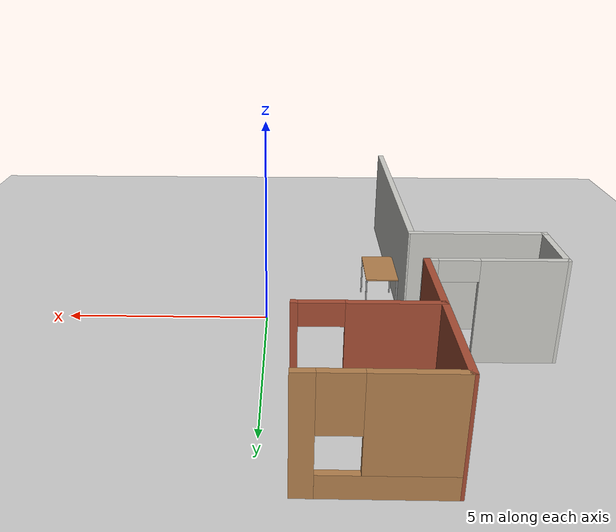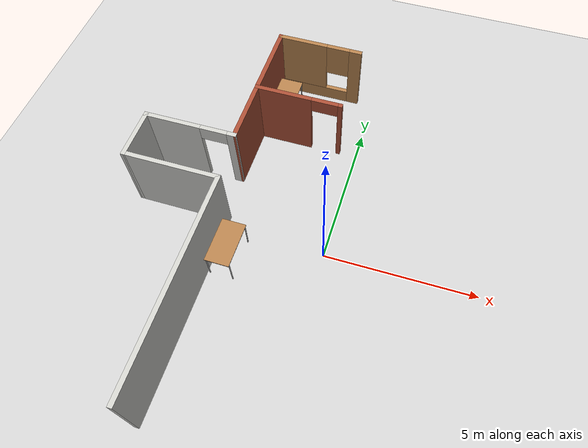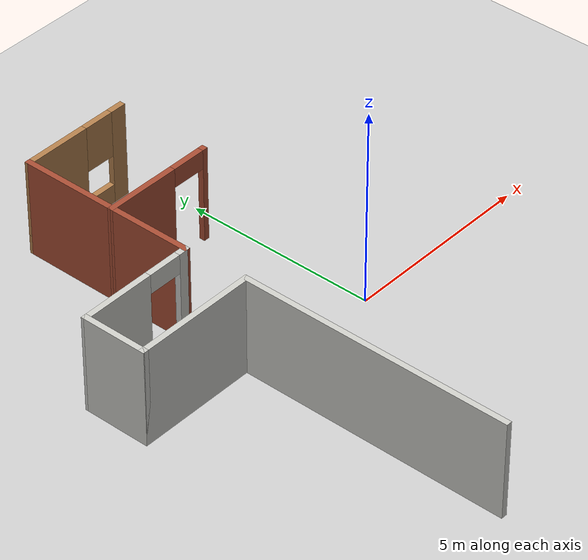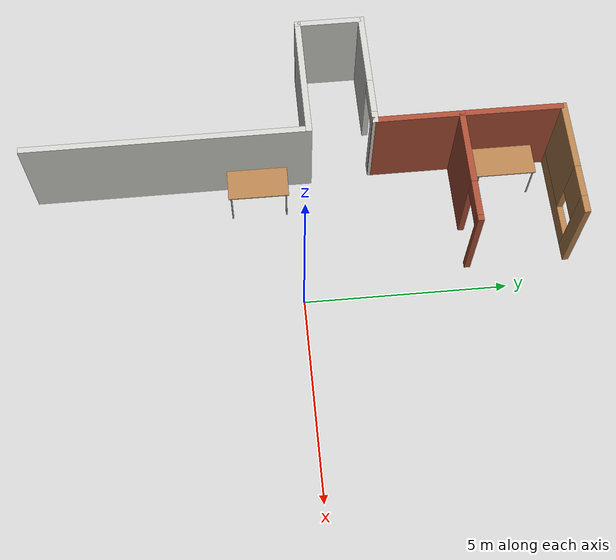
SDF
<sdf version="1.6">
 <world name="default">
  <model name="my_room">
   <link name="Wall_1">
    <pose>-6.52484 1.1312 0 0 0 -1.5708</pose>
    <visual name="Wall_1_Visual">
     <pose>0 0 1.25 0 -0 0</pose>
     <geometry><box><size>1.75 0.15 2.5</size></box></geometry>
     <material>
      <script><uri>file://media/materials/scripts/gazebo.material</uri><name>Gazebo/CeilingTiled</name></script>
      <ambient>1 1 1 1</ambient>
      <shader type="pixel"/>
      <diffuse>1 1 1 1</diffuse>
      <specular>0 0 0 1</specular>
      <emissive>0 0 0 1</emissive>
     </material>
     <meta><layer>0</layer></meta>
    </visual>
    <collision name="Wall_1_Collision">
     <pose>0 0 1.25 0 -0 0</pose>
     <geometry><box><size>1.75 0.15 2.5</size></box></geometry>
     <surface>
      <friction>
       <ode><mu>1</mu><mu2>1</mu2><fdir1>0 0 0</fdir1><slip1>0</slip1><slip2>0</slip2></ode>
       <torsional>
        <coefficient>1</coefficient>
        <patch_radius>0</patch_radius>
        <surface_radius>0</surface_radius>
        <use_patch_radius>1</use_patch_radius>
        <ode><slip>0</slip></ode>
       </torsional>
      </friction>
      <bounce><restitution_coefficient>0</restitution_coefficient><threshold>1e+06</threshold></bounce>
      <contact>
       <collide_without_contact>0</collide_without_contact>
       <collide_without_contact_bitmask>1</collide_without_contact_bitmask>
       <collide_bitmask>1</collide_bitmask>
       <ode>
        <soft_cfm>0</soft_cfm>
        <soft_erp>0.2</soft_erp>
        <kp>1e+13</kp>
        <kd>1</kd>
        <max_vel>0.01</max_vel>
        <min_depth>0</min_depth>
       </ode>
       <bullet>
        <split_impulse>1</split_impulse>
        <split_impulse_penetration_threshold>-0.01</split_impulse_penetration_threshold>
        <soft_cfm>0</soft_cfm>
        <soft_erp>0.2</soft_erp>
        <kp>1e+13</kp>
        <kd>1</kd>
       </bullet>
      </contact>
     </surface>
    </collision>
   </link>
   <link name="Wall_2">
    <pose>-4.97483 0.3312 0 0 -0 0</pose>
    <visual name="Wall_2_Visual">
     <pose>0 0 1.25 0 -0 0</pose>
     <geometry><box><size>3.25 0.15 2.5</size></box></geometry>
     <material>
      <script><uri>file://media/materials/scripts/gazebo.material</uri><name>Gazebo/CeilingTiled</name></script>
      <ambient>1 1 1 1</ambient>
      <shader type="pixel"/>
      <diffuse>1 1 1 1</diffuse>
      <specular>0 0 0 1</specular>
      <emissive>0 0 0 1</emissive>
     </material>
     <meta><layer>0</layer></meta>
    </visual>
    <collision name="Wall_2_Collision">
     <pose>0 0 1.25 0 -0 0</pose>
     <geometry><box><size>3.25 0.15 2.5</size></box></geometry>
     <surface>
      <friction>
       <ode><mu>1</mu><mu2>1</mu2><fdir1>0 0 0</fdir1><slip1>0</slip1><slip2>0</slip2></ode>
       <torsional>
        <coefficient>1</coefficient>
        <patch_radius>0</patch_radius>
        <surface_radius>0</surface_radius>
        <use_patch_radius>1</use_patch_radius>
        <ode><slip>0</slip></ode>
       </torsional>
      </friction>
      <bounce><restitution_coefficient>0</restitution_coefficient><threshold>1e+06</threshold></bounce>
      <contact>
       <collide_without_contact>0</collide_without_contact>
       <collide_without_contact_bitmask>1</collide_without_contact_bitmask>
       <collide_bitmask>1</collide_bitmask>
       <ode>
        <soft_cfm>0</soft_cfm>
        <soft_erp>0.2</soft_erp>
        <kp>1e+13</kp>
        <kd>1</kd>
        <max_vel>0.01</max_vel>
        <min_depth>0</min_depth>
       </ode>
       <bullet>
        <split_impulse>1</split_impulse>
        <split_impulse_penetration_threshold>-0.01</split_impulse_penetration_threshold>
        <soft_cfm>0</soft_cfm>
        <soft_erp>0.2</soft_erp>
        <kp>1e+13</kp>
        <kd>1</kd>
       </bullet>
      </contact>
     </surface>
    </collision>
   </link>
   <link name="Wall_27">
    <pose>-2.10355 4.04438 0 0 -0 3.14159</pose>
    <visual name="Wall_27_Visual_1">
     <pose>0.523887 0 1.25 0 -0 0</pose>
     <geometry><box><size>1.95223 0.15 2.5</size></box></geometry>
     <material>
      <script><uri>file://media/materials/scripts/gazebo.material</uri><name>Gazebo/Bricks</name></script>
      <ambient>1 1 1 1</ambient>
      <shader type="pixel"/>
      <diffuse>1 1 1 1</diffuse>
      <specular>0.2 0.2 0.2 1</specular>
      <emissive>0 0 0 1</emissive>
     </material>
     <meta><layer>0</layer></meta>
    </visual>
    <visual name="Wall_27_Visual_2">
     <pose>-0.902225 0 2.25 0 -0 0</pose>
     <geometry><box><size>0.9 0.15 0.5</size></box></geometry>
     <material>
      <script><uri>file://media/materials/scripts/gazebo.material</uri><name>Gazebo/Bricks</name></script>
      <ambient>1 1 1 1</ambient>
      <shader type="pixel"/>
      <diffuse>1 1 1 1</diffuse>
      <specular>0.2 0.2 0.2 1</specular>
      <emissive>0 0 0 1</emissive>
     </material>
     <meta><layer>0</layer></meta>
    </visual>
    <visual name="Wall_27_Visual_0">
     <pose>-1.42611 0 1.25 0 -0 0</pose>
     <geometry><box><size>0.147775 0.15 2.5</size></box></geometry>
     <material>
      <script><uri>file://media/materials/scripts/gazebo.material</uri><name>Gazebo/Bricks</name></script>
      <ambient>1 1 1 1</ambient>
      <shader type="pixel"/>
      <diffuse>1 1 1 1</diffuse>
      <specular>0.2 0.2 0.2 1</specular>
      <emissive>0 0 0 1</emissive>
     </material>
     <meta><layer>0</layer></meta>
    </visual>
    <collision name="Wall_27_Collision_2">
     <pose>-0.902225 0 2.25 0 -0 0</pose>
     <geometry><box><size>0.9 0.15 0.5</size></box></geometry>
     <surface>
      <friction>
       <ode><mu>1</mu><mu2>1</mu2><fdir1>0 0 0</fdir1><slip1>0</slip1><slip2>0</slip2></ode>
       <torsional>
        <coefficient>1</coefficient>
        <patch_radius>0</patch_radius>
        <surface_radius>0</surface_radius>
        <use_patch_radius>1</use_patch_radius>
        <ode><slip>0</slip></ode>
       </torsional>
      </friction>
      <bounce><restitution_coefficient>0</restitution_coefficient><threshold>1e+06</threshold></bounce>
      <contact>
       <collide_without_contact>0</collide_without_contact>
       <collide_without_contact_bitmask>1</collide_without_contact_bitmask>
       <collide_bitmask>1</collide_bitmask>
       <ode>
        <soft_cfm>0</soft_cfm>
        <soft_erp>0.2</soft_erp>
        <kp>1e+13</kp>
        <kd>1</kd>
        <max_vel>0.01</max_vel>
        <min_depth>0</min_depth>
       </ode>
       <bullet>
        <split_impulse>1</split_impulse>
        <split_impulse_penetration_threshold>-0.01</split_impulse_penetration_threshold>
        <soft_cfm>0</soft_cfm>
        <soft_erp>0.2</soft_erp>
        <kp>1e+13</kp>
        <kd>1</kd>
       </bullet>
      </contact>
     </surface>
    </collision>
    <collision name="Wall_27_Collision_1">
     <pose>0.523887 0 1.25 0 -0 0</pose>
     <geometry><box><size>1.95223 0.15 2.5</size></box></geometry>
     <surface>
      <friction>
       <ode><mu>1</mu><mu2>1</mu2><fdir1>0 0 0</fdir1><slip1>0</slip1><slip2>0</slip2></ode>
       <torsional>
        <coefficient>1</coefficient>
        <patch_radius>0</patch_radius>
        <surface_radius>0</surface_radius>
        <use_patch_radius>1</use_patch_radius>
        <ode><slip>0</slip></ode>
       </torsional>
      </friction>
      <bounce><restitution_coefficient>0</restitution_coefficient><threshold>1e+06</threshold></bounce>
      <contact>
       <collide_without_contact>0</collide_without_contact>
       <collide_without_contact_bitmask>1</collide_without_contact_bitmask>
       <collide_bitmask>1</collide_bitmask>
       <ode>
        <soft_cfm>0</soft_cfm>
        <soft_erp>0.2</soft_erp>
        <kp>1e+13</kp>
        <kd>1</kd>
        <max_vel>0.01</max_vel>
        <min_depth>0</min_depth>
       </ode>
       <bullet>
        <split_impulse>1</split_impulse>
        <split_impulse_penetration_threshold>-0.01</split_impulse_penetration_threshold>
        <soft_cfm>0</soft_cfm>
        <soft_erp>0.2</soft_erp>
        <kp>1e+13</kp>
        <kd>1</kd>
       </bullet>
      </contact>
     </surface>
    </collision>
    <collision name="Wall_27_Collision_0">
     <pose>-1.42611 0 1.25 0 -0 0</pose>
     <geometry><box><size>0.147775 0.15 2.5</size></box></geometry>
     <surface>
      <friction>
       <ode><mu>1</mu><mu2>1</mu2><fdir1>0 0 0</fdir1><slip1>0</slip1><slip2>0</slip2></ode>
       <torsional>
        <coefficient>1</coefficient>
        <patch_radius>0</patch_radius>
        <surface_radius>0</surface_radius>
        <use_patch_radius>1</use_patch_radius>
        <ode><slip>0</slip></ode>
       </torsional>
      </friction>
      <bounce><restitution_coefficient>0</restitution_coefficient><threshold>1e+06</threshold></bounce>
      <contact>
       <collide_without_contact>0</collide_without_contact>
       <collide_without_contact_bitmask>1</collide_without_contact_bitmask>
       <collide_bitmask>1</collide_bitmask>
       <ode>
        <soft_cfm>0</soft_cfm>
        <soft_erp>0.2</soft_erp>
        <kp>1e+13</kp>
        <kd>1</kd>
        <max_vel>0.01</max_vel>
        <min_depth>0</min_depth>
       </ode>
       <bullet>
        <split_impulse>1</split_impulse>
        <split_impulse_penetration_threshold>-0.01</split_impulse_penetration_threshold>
        <soft_cfm>0</soft_cfm>
        <soft_erp>0.2</soft_erp>
        <kp>1e+13</kp>
        <kd>1</kd>
       </bullet>
      </contact>
     </surface>
    </collision>
   </link>
   <link name="Wall_3">
    <pose>-3.42483 -3.0938 0 0 0 -1.5708</pose>
    <visual name="Wall_3_Visual">
     <pose>0 0 1.25 0 -0 0</pose>
     <geometry><box><size>7 0.15 2.5</size></box></geometry>
     <material>
      <script><uri>file://media/materials/scripts/gazebo.material</uri><name>Gazebo/CeilingTiled</name></script>
      <ambient>0.760784 0.662745 0.627451 1</ambient>
      <shader type="pixel"/>
      <diffuse>1 1 1 1</diffuse>
      <specular>0 0 0 1</specular>
      <emissive>0 0 0 1</emissive>
     </material>
     <meta><layer>0</layer></meta>
    </visual>
    <collision name="Wall_3_Collision">
     <pose>0 0 1.25 0 -0 0</pose>
     <geometry><box><size>7 0.15 2.5</size></box></geometry>
     <surface>
      <friction>
       <ode><mu>1</mu><mu2>1</mu2><fdir1>0 0 0</fdir1><slip1>0</slip1><slip2>0</slip2></ode>
       <torsional>
        <coefficient>1</coefficient>
        <patch_radius>0</patch_radius>
        <surface_radius>0</surface_radius>
        <use_patch_radius>1</use_patch_radius>
        <ode><slip>0</slip></ode>
       </torsional>
      </friction>
      <bounce><restitution_coefficient>0</restitution_coefficient><threshold>1e+06</threshold></bounce>
      <contact>
       <collide_without_contact>0</collide_without_contact>
       <collide_without_contact_bitmask>1</collide_without_contact_bitmask>
       <collide_bitmask>1</collide_bitmask>
       <ode>
        <soft_cfm>0</soft_cfm>
        <soft_erp>0.2</soft_erp>
        <kp>1e+13</kp>
        <kd>1</kd>
        <max_vel>0.01</max_vel>
        <min_depth>0</min_depth>
       </ode>
       <bullet>
        <split_impulse>1</split_impulse>
        <split_impulse_penetration_threshold>-0.01</split_impulse_penetration_threshold>
        <soft_cfm>0</soft_cfm>
        <soft_erp>0.2</soft_erp>
        <kp>1e+13</kp>
        <kd>1</kd>
       </bullet>
      </contact>
     </surface>
    </collision>
   </link>
   <link name="Wall_30">
    <pose>-2.09984 6.51869 0 0 -0 3.14159</pose>
    <visual name="Wall_30_Visual_0">
     <pose>-1.28297 0 1.25 0 -0 0</pose>
     <geometry><box><size>0.434056 0.15 2.5</size></box></geometry>
     <material>
      <script><uri>file://media/materials/scripts/gazebo.material</uri><name>Gazebo/Wood</name></script>
      <ambient>1 1 1 1</ambient>
      <shader type="pixel"/>
      <diffuse>1 1 1 1</diffuse>
      <specular>0.2 0.2 0.2 1</specular>
      <emissive>0 0 0 1</emissive>
     </material>
     <meta><layer>0</layer></meta>
    </visual>
    <visual name="Wall_30_Visual_1">
     <pose>0.217028 0 0.25 0 -0 0</pose>
     <geometry><box><size>2.56594 0.15 0.5</size></box></geometry>
     <material>
      <script><uri>file://media/materials/scripts/gazebo.material</uri><name>Gazebo/Wood</name></script>
      <ambient>1 1 1 1</ambient>
      <shader type="pixel"/>
      <diffuse>1 1 1 1</diffuse>
      <specular>0.2 0.2 0.2 1</specular>
      <emissive>0 0 0 1</emissive>
     </material>
     <meta><layer>0</layer></meta>
    </visual>
    <visual name="Wall_30_Visual_3">
     <pose>-0.665944 0 1.9 0 -0 0</pose>
     <geometry><box><size>0.8 0.15 1.2</size></box></geometry>
     <material>
      <script><uri>file://media/materials/scripts/gazebo.material</uri><name>Gazebo/Wood</name></script>
      <ambient>1 1 1 1</ambient>
      <shader type="pixel"/>
      <diffuse>1 1 1 1</diffuse>
      <specular>0.2 0.2 0.2 1</specular>
      <emissive>0 0 0 1</emissive>
     </material>
     <meta><layer>0</layer></meta>
    </visual>
    <visual name="Wall_30_Visual_2">
     <pose>0.617028 0 1.5 0 -0 0</pose>
     <geometry><box><size>1.76594 0.15 2</size></box></geometry>
     <material>
      <script><uri>file://media/materials/scripts/gazebo.material</uri><name>Gazebo/Wood</name></script>
      <ambient>1 1 1 1</ambient>
      <shader type="pixel"/>
      <diffuse>1 1 1 1</diffuse>
      <specular>0.2 0.2 0.2 1</specular>
      <emissive>0 0 0 1</emissive>
     </material>
     <meta><layer>0</layer></meta>
    </visual>
    <collision name="Wall_30_Collision_1">
     <pose>0.217028 0 0.25 0 -0 0</pose>
     <geometry><box><size>2.56594 0.15 0.5</size></box></geometry>
     <surface>
      <friction>
       <ode><mu>1</mu><mu2>1</mu2><fdir1>0 0 0</fdir1><slip1>0</slip1><slip2>0</slip2></ode>
       <torsional>
        <coefficient>1</coefficient>
        <patch_radius>0</patch_radius>
        <surface_radius>0</surface_radius>
        <use_patch_radius>1</use_patch_radius>
        <ode><slip>0</slip></ode>
       </torsional>
      </friction>
      <bounce><restitution_coefficient>0</restitution_coefficient><threshold>1e+06</threshold></bounce>
      <contact>
       <collide_without_contact>0</collide_without_contact>
       <collide_without_contact_bitmask>1</collide_without_contact_bitmask>
       <collide_bitmask>1</collide_bitmask>
       <ode>
        <soft_cfm>0</soft_cfm>
        <soft_erp>0.2</soft_erp>
        <kp>1e+13</kp>
        <kd>1</kd>
        <max_vel>0.01</max_vel>
        <min_depth>0</min_depth>
       </ode>
       <bullet>
        <split_impulse>1</split_impulse>
        <split_impulse_penetration_threshold>-0.01</split_impulse_penetration_threshold>
        <soft_cfm>0</soft_cfm>
        <soft_erp>0.2</soft_erp>
        <kp>1e+13</kp>
        <kd>1</kd>
       </bullet>
      </contact>
     </surface>
    </collision>
    <collision name="Wall_30_Collision_2">
     <pose>0.617028 0 1.5 0 -0 0</pose>
     <geometry><box><size>1.76594 0.15 2</size></box></geometry>
     <surface>
      <friction>
       <ode><mu>1</mu><mu2>1</mu2><fdir1>0 0 0</fdir1><slip1>0</slip1><slip2>0</slip2></ode>
       <torsional>
        <coefficient>1</coefficient>
        <patch_radius>0</patch_radius>
        <surface_radius>0</surface_radius>
        <use_patch_radius>1</use_patch_radius>
        <ode><slip>0</slip></ode>
       </torsional>
      </friction>
      <bounce><restitution_coefficient>0</restitution_coefficient><threshold>1e+06</threshold></bounce>
      <contact>
       <collide_without_contact>0</collide_without_contact>
       <collide_without_contact_bitmask>1</collide_without_contact_bitmask>
       <collide_bitmask>1</collide_bitmask>
       <ode>
        <soft_cfm>0</soft_cfm>
        <soft_erp>0.2</soft_erp>
        <kp>1e+13</kp>
        <kd>1</kd>
        <max_vel>0.01</max_vel>
        <min_depth>0</min_depth>
       </ode>
       <bullet>
        <split_impulse>1</split_impulse>
        <split_impulse_penetration_threshold>-0.01</split_impulse_penetration_threshold>
        <soft_cfm>0</soft_cfm>
        <soft_erp>0.2</soft_erp>
        <kp>1e+13</kp>
        <kd>1</kd>
       </bullet>
      </contact>
     </surface>
    </collision>
    <collision name="Wall_30_Collision_0">
     <pose>-1.28297 0 1.25 0 -0 0</pose>
     <geometry><box><size>0.434056 0.15 2.5</size></box></geometry>
     <surface>
      <friction>
       <ode><mu>1</mu><mu2>1</mu2><fdir1>0 0 0</fdir1><slip1>0</slip1><slip2>0</slip2></ode>
       <torsional>
        <coefficient>1</coefficient>
        <patch_radius>0</patch_radius>
        <surface_radius>0</surface_radius>
        <use_patch_radius>1</use_patch_radius>
        <ode><slip>0</slip></ode>
       </torsional>
      </friction>
      <bounce><restitution_coefficient>0</restitution_coefficient><threshold>1e+06</threshold></bounce>
      <contact>
       <collide_without_contact>0</collide_without_contact>
       <collide_without_contact_bitmask>1</collide_without_contact_bitmask>
       <collide_bitmask>1</collide_bitmask>
       <ode>
        <soft_cfm>0</soft_cfm>
        <soft_erp>0.2</soft_erp>
        <kp>1e+13</kp>
        <kd>1</kd>
        <max_vel>0.01</max_vel>
        <min_depth>0</min_depth>
       </ode>
       <bullet>
        <split_impulse>1</split_impulse>
        <split_impulse_penetration_threshold>-0.01</split_impulse_penetration_threshold>
        <soft_cfm>0</soft_cfm>
        <soft_erp>0.2</soft_erp>
        <kp>1e+13</kp>
        <kd>1</kd>
       </bullet>
      </contact>
     </surface>
    </collision>
    <collision name="Wall_30_Collision_3">
     <pose>-0.665944 0 1.9 0 -0 0</pose>
     <geometry><box><size>0.8 0.15 1.2</size></box></geometry>
     <surface>
      <friction>
       <ode><mu>1</mu><mu2>1</mu2><fdir1>0 0 0</fdir1><slip1>0</slip1><slip2>0</slip2></ode>
       <torsional>
        <coefficient>1</coefficient>
        <patch_radius>0</patch_radius>
        <surface_radius>0</surface_radius>
        <use_patch_radius>1</use_patch_radius>
        <ode><slip>0</slip></ode>
       </torsional>
      </friction>
      <bounce><restitution_coefficient>0</restitution_coefficient><threshold>1e+06</threshold></bounce>
      <contact>
       <collide_without_contact>0</collide_without_contact>
       <collide_without_contact_bitmask>1</collide_without_contact_bitmask>
       <collide_bitmask>1</collide_bitmask>
       <ode>
        <soft_cfm>0</soft_cfm>
        <soft_erp>0.2</soft_erp>
        <kp>1e+13</kp>
        <kd>1</kd>
        <max_vel>0.01</max_vel>
        <min_depth>0</min_depth>
       </ode>
       <bullet>
        <split_impulse>1</split_impulse>
        <split_impulse_penetration_threshold>-0.01</split_impulse_penetration_threshold>
        <soft_cfm>0</soft_cfm>
        <soft_erp>0.2</soft_erp>
        <kp>1e+13</kp>
        <kd>1</kd>
       </bullet>
      </contact>
     </surface>
    </collision>
   </link>
   <link name="Wall_31">
    <pose>-3.52669 5.28153 0 0 0 -1.5723</pose>
    <visual name="Wall_31_Visual">
     <pose>0 0 1.25 0 -0 0</pose>
     <geometry><box><size>2.62431 0.15 2.5</size></box></geometry>
     <material>
      <script><uri>file://media/materials/scripts/gazebo.material</uri><name>Gazebo/Bricks</name></script>
      <ambient>1 1 1 1</ambient>
      <shader type="pixel"/>
      <diffuse>1 1 1 1</diffuse>
      <specular>0.2 0.2 0.2 1</specular>
      <emissive>0 0 0 1</emissive>
     </material>
     <meta><layer>0</layer></meta>
    </visual>
    <collision name="Wall_31_Collision">
     <pose>0 0 1.25 0 -0 0</pose>
     <geometry><box><size>2.62431 0.15 2.5</size></box></geometry>
     <surface>
      <friction>
       <ode><mu>1</mu><mu2>1</mu2><fdir1>0 0 0</fdir1><slip1>0</slip1><slip2>0</slip2></ode>
       <torsional>
        <coefficient>1</coefficient>
        <patch_radius>0</patch_radius>
        <surface_radius>0</surface_radius>
        <use_patch_radius>1</use_patch_radius>
        <ode><slip>0</slip></ode>
       </torsional>
      </friction>
      <bounce><restitution_coefficient>0</restitution_coefficient><threshold>1e+06</threshold></bounce>
      <contact>
       <collide_without_contact>0</collide_without_contact>
       <collide_without_contact_bitmask>1</collide_without_contact_bitmask>
       <collide_bitmask>1</collide_bitmask>
       <ode>
        <soft_cfm>0</soft_cfm>
        <soft_erp>0.2</soft_erp>
        <kp>1e+13</kp>
        <kd>1</kd>
        <max_vel>0.01</max_vel>
        <min_depth>0</min_depth>
       </ode>
       <bullet>
        <split_impulse>1</split_impulse>
        <split_impulse_penetration_threshold>-0.01</split_impulse_penetration_threshold>
        <soft_cfm>0</soft_cfm>
        <soft_erp>0.2</soft_erp>
        <kp>1e+13</kp>
        <kd>1</kd>
       </bullet>
      </contact>
     </surface>
    </collision>
   </link>
   <link name="Wall_37">
    <pose>-3.52855 2.99438 0 0 0 -1.5708</pose>
    <visual name="Wall_37_Visual">
     <pose>0 0 1.25 0 -0 0</pose>
     <geometry><box><size>2.25 0.15 2.5</size></box></geometry>
     <material>
      <script><uri>file://media/materials/scripts/gazebo.material</uri><name>Gazebo/Bricks</name></script>
      <ambient>1 1 1 1</ambient>
      <shader type="pixel"/>
      <diffuse>1 1 1 1</diffuse>
      <specular>0.2 0.2 0.2 1</specular>
      <emissive>0 0 0 1</emissive>
     </material>
     <meta><layer>0</layer></meta>
    </visual>
    <collision name="Wall_37_Collision">
     <pose>0 0 1.25 0 -0 0</pose>
     <geometry><box><size>2.25 0.15 2.5</size></box></geometry>
     <surface>
      <friction>
       <ode><mu>1</mu><mu2>1</mu2><fdir1>0 0 0</fdir1><slip1>0</slip1><slip2>0</slip2></ode>
       <torsional>
        <coefficient>1</coefficient>
        <patch_radius>0</patch_radius>
        <surface_radius>0</surface_radius>
        <use_patch_radius>1</use_patch_radius>
        <ode><slip>0</slip></ode>
       </torsional>
      </friction>
      <bounce><restitution_coefficient>0</restitution_coefficient><threshold>1e+06</threshold></bounce>
      <contact>
       <collide_without_contact>0</collide_without_contact>
       <collide_without_contact_bitmask>1</collide_without_contact_bitmask>
       <collide_bitmask>1</collide_bitmask>
       <ode>
        <soft_cfm>0</soft_cfm>
        <soft_erp>0.2</soft_erp>
        <kp>1e+13</kp>
        <kd>1</kd>
        <max_vel>0.01</max_vel>
        <min_depth>0</min_depth>
       </ode>
       <bullet>
        <split_impulse>1</split_impulse>
        <split_impulse_penetration_threshold>-0.01</split_impulse_penetration_threshold>
        <soft_cfm>0</soft_cfm>
        <soft_erp>0.2</soft_erp>
        <kp>1e+13</kp>
        <kd>1</kd>
       </bullet>
      </contact>
     </surface>
    </collision>
   </link>
   <link name="Wall_38">
    <pose>-5.02669 1.93779 0 0 0 -3.1372</pose>
    <visual name="Wall_38_Visual_1">
     <pose>0.609745 0 1.25 0 -0 0</pose>
     <geometry><box><size>1.92683 0.15 2.5</size></box></geometry>
     <material>
      <script><uri>file://media/materials/scripts/gazebo.material</uri><name>Gazebo/CeilingTiled</name></script>
      <ambient>1 1 1 1</ambient>
      <shader type="pixel"/>
      <diffuse>1 1 1 1</diffuse>
      <specular>0 0 0 1</specular>
      <emissive>0 0 0 1</emissive>
     </material>
     <meta><layer>0</layer></meta>
    </visual>
    <visual name="Wall_38_Visual_2">
     <pose>-0.803667 0 2.25 0 -0 0</pose>
     <geometry><box><size>0.9 0.15 0.5</size></box></geometry>
     <material>
      <script><uri>file://media/materials/scripts/gazebo.material</uri><name>Gazebo/CeilingTiled</name></script>
      <ambient>1 1 1 1</ambient>
      <shader type="pixel"/>
      <diffuse>1 1 1 1</diffuse>
      <specular>0 0 0 1</specular>
      <emissive>0 0 0 1</emissive>
     </material>
     <meta><layer>0</layer></meta>
    </visual>
    <visual name="Wall_38_Visual_0">
     <pose>-1.41341 0 1.25 0 -0 0</pose>
     <geometry><box><size>0.319491 0.15 2.5</size></box></geometry>
     <material>
      <script><uri>file://media/materials/scripts/gazebo.material</uri><name>Gazebo/CeilingTiled</name></script>
      <ambient>1 1 1 1</ambient>
      <shader type="pixel"/>
      <diffuse>1 1 1 1</diffuse>
      <specular>0 0 0 1</specular>
      <emissive>0 0 0 1</emissive>
     </material>
     <meta><layer>0</layer></meta>
    </visual>
    <collision name="Wall_38_Collision_2">
     <pose>-0.803667 0 2.25 0 -0 0</pose>
     <geometry><box><size>0.9 0.15 0.5</size></box></geometry>
     <surface>
      <friction>
       <ode><mu>1</mu><mu2>1</mu2><fdir1>0 0 0</fdir1><slip1>0</slip1><slip2>0</slip2></ode>
       <torsional>
        <coefficient>1</coefficient>
        <patch_radius>0</patch_radius>
        <surface_radius>0</surface_radius>
        <use_patch_radius>1</use_patch_radius>
        <ode><slip>0</slip></ode>
       </torsional>
      </friction>
      <bounce><restitution_coefficient>0</restitution_coefficient><threshold>1e+06</threshold></bounce>
      <contact>
       <collide_without_contact>0</collide_without_contact>
       <collide_without_contact_bitmask>1</collide_without_contact_bitmask>
       <collide_bitmask>1</collide_bitmask>
       <ode>
        <soft_cfm>0</soft_cfm>
        <soft_erp>0.2</soft_erp>
        <kp>1e+13</kp>
        <kd>1</kd>
        <max_vel>0.01</max_vel>
        <min_depth>0</min_depth>
       </ode>
       <bullet>
        <split_impulse>1</split_impulse>
        <split_impulse_penetration_threshold>-0.01</split_impulse_penetration_threshold>
        <soft_cfm>0</soft_cfm>
        <soft_erp>0.2</soft_erp>
        <kp>1e+13</kp>
        <kd>1</kd>
       </bullet>
      </contact>
     </surface>
    </collision>
    <collision name="Wall_38_Collision_0">
     <pose>-1.41341 0 1.25 0 -0 0</pose>
     <geometry><box><size>0.319491 0.15 2.5</size></box></geometry>
     <surface>
      <friction>
       <ode><mu>1</mu><mu2>1</mu2><fdir1>0 0 0</fdir1><slip1>0</slip1><slip2>0</slip2></ode>
       <torsional>
        <coefficient>1</coefficient>
        <patch_radius>0</patch_radius>
        <surface_radius>0</surface_radius>
        <use_patch_radius>1</use_patch_radius>
        <ode><slip>0</slip></ode>
       </torsional>
      </friction>
      <bounce><restitution_coefficient>0</restitution_coefficient><threshold>1e+06</threshold></bounce>
      <contact>
       <collide_without_contact>0</collide_without_contact>
       <collide_without_contact_bitmask>1</collide_without_contact_bitmask>
       <collide_bitmask>1</collide_bitmask>
       <ode>
        <soft_cfm>0</soft_cfm>
        <soft_erp>0.2</soft_erp>
        <kp>1e+13</kp>
        <kd>1</kd>
        <max_vel>0.01</max_vel>
        <min_depth>0</min_depth>
       </ode>
       <bullet>
        <split_impulse>1</split_impulse>
        <split_impulse_penetration_threshold>-0.01</split_impulse_penetration_threshold>
        <soft_cfm>0</soft_cfm>
        <soft_erp>0.2</soft_erp>
        <kp>1e+13</kp>
        <kd>1</kd>
       </bullet>
      </contact>
     </surface>
    </collision>
    <collision name="Wall_38_Collision_1">
     <pose>0.609745 0 1.25 0 -0 0</pose>
     <geometry><box><size>1.92683 0.15 2.5</size></box></geometry>
     <surface>
      <friction>
       <ode><mu>1</mu><mu2>1</mu2><fdir1>0 0 0</fdir1><slip1>0</slip1><slip2>0</slip2></ode>
       <torsional>
        <coefficient>1</coefficient>
        <patch_radius>0</patch_radius>
        <surface_radius>0</surface_radius>
        <use_patch_radius>1</use_patch_radius>
        <ode><slip>0</slip></ode>
       </torsional>
      </friction>
      <bounce><restitution_coefficient>0</restitution_coefficient><threshold>1e+06</threshold></bounce>
      <contact>
       <collide_without_contact>0</collide_without_contact>
       <collide_without_contact_bitmask>1</collide_without_contact_bitmask>
       <collide_bitmask>1</collide_bitmask>
       <ode>
        <soft_cfm>0</soft_cfm>
        <soft_erp>0.2</soft_erp>
        <kp>1e+13</kp>
        <kd>1</kd>
        <max_vel>0.01</max_vel>
        <min_depth>0</min_depth>
       </ode>
       <bullet>
        <split_impulse>1</split_impulse>
        <split_impulse_penetration_threshold>-0.01</split_impulse_penetration_threshold>
        <soft_cfm>0</soft_cfm>
        <soft_erp>0.2</soft_erp>
        <kp>1e+13</kp>
        <kd>1</kd>
       </bullet>
      </contact>
     </surface>
    </collision>
   </link>
   <static>1</static>
   <pose>0.007918 0.078539 0 0 -0 0</pose>
  </model>
  <model name="table">
   <static>1</static>
   <link name="link">
    <collision name="surface">
     <pose>0 0 1 0 -0 0</pose>
     <geometry><box><size>1.5 0.8 0.03</size></box></geometry>
     <surface><friction><ode><mu>0.6</mu><mu2>0.6</mu2></ode></friction></surface>
    </collision>
    <visual name="visual1">
     <pose>0 0 1 0 -0 0</pose>
     <geometry><box><size>1.5 0.8 0.03</size></box></geometry>
     <material>
      <script><uri>file://media/materials/scripts/gazebo.material</uri><name>Gazebo/Wood</name></script>
     </material>
    </visual>
    <collision name="front_left_leg">
     <pose>0.68 0.38 0.5 0 -0 0</pose>
     <geometry><cylinder><radius>0.02</radius><length>1</length></cylinder></geometry>
    </collision>
    <visual name="front_left_leg">
     <pose>0.68 0.38 0.5 0 -0 0</pose>
     <geometry><cylinder><radius>0.02</radius><length>1</length></cylinder></geometry>
     <material>
      <script><uri>file://media/materials/scripts/gazebo.material</uri><name>Gazebo/Grey</name></script>
     </material>
    </visual>
    <collision name="front_right_leg">
     <pose>0.68 -0.38 0.5 0 -0 0</pose>
     <geometry><cylinder><radius>0.02</radius><length>1</length></cylinder></geometry>
    </collision>
    <visual name="front_right_leg">
     <pose>0.68 -0.38 0.5 0 -0 0</pose>
     <geometry><cylinder><radius>0.02</radius><length>1</length></cylinder></geometry>
     <material>
      <script><uri>file://media/materials/scripts/gazebo.material</uri><name>Gazebo/Grey</name></script>
     </material>
    </visual>
    <collision name="back_right_leg">
     <pose>-0.68 -0.38 0.5 0 -0 0</pose>
     <geometry><cylinder><radius>0.02</radius><length>1</length></cylinder></geometry>
    </collision>
    <visual name="back_right_leg">
     <pose>-0.68 -0.38 0.5 0 -0 0</pose>
     <geometry><cylinder><radius>0.02</radius><length>1</length></cylinder></geometry>
     <material>
      <script><uri>file://media/materials/scripts/gazebo.material</uri><name>Gazebo/Grey</name></script>
     </material>
    </visual>
    <collision name="back_left_leg">
     <pose>-0.68 0.38 0.5 0 -0 0</pose>
     <geometry><cylinder><radius>0.02</radius><length>1</length></cylinder></geometry>
    </collision>
    <visual name="back_left_leg">
     <pose>-0.68 0.38 0.5 0 -0 0</pose>
     <geometry><cylinder><radius>0.02</radius><length>1</length></cylinder></geometry>
     <material>
      <script><uri>file://media/materials/scripts/gazebo.material</uri><name>Gazebo/Grey</name></script>
     </material>
    </visual>
   </link>
   <pose>-2.8797 -0.902558 0 0 -0 1.5661</pose>
  </model>
  <model name="table_1">
   <static>1</static>
   <link name="link">
    <collision name="surface">
     <pose>0 0 1 0 -0 0</pose>
     <geometry><box><size>1.5 0.8 0.03</size></box></geometry>
     <surface><friction><ode><mu>0.6</mu><mu2>0.6</mu2></ode></friction></surface>
    </collision>
    <visual name="visual1">
     <pose>0 0 1 0 -0 0</pose>
     <geometry><box><size>1.5 0.8 0.03</size></box></geometry>
     <material>
      <script><uri>file://media/materials/scripts/gazebo.material</uri><name>Gazebo/Wood</name></script>
     </material>
    </visual>
    <collision name="front_left_leg">
     <pose>0.68 0.38 0.5 0 -0 0</pose>
     <geometry><cylinder><radius>0.02</radius><length>1</length></cylinder></geometry>
    </collision>
    <visual name="front_left_leg">
     <pose>0.68 0.38 0.5 0 -0 0</pose>
     <geometry><cylinder><radius>0.02</radius><length>1</length></cylinder></geometry>
     <material>
      <script><uri>file://media/materials/scripts/gazebo.material</uri><name>Gazebo/Grey</name></script>
     </material>
    </visual>
    <collision name="front_right_leg">
     <pose>0.68 -0.38 0.5 0 -0 0</pose>
     <geometry><cylinder><radius>0.02</radius><length>1</length></cylinder></geometry>
    </collision>
    <visual name="front_right_leg">
     <pose>0.68 -0.38 0.5 0 -0 0</pose>
     <geometry><cylinder><radius>0.02</radius><length>1</length></cylinder></geometry>
     <material>
      <script><uri>file://media/materials/scripts/gazebo.material</uri><name>Gazebo/Grey</name></script>
     </material>
    </visual>
    <collision name="back_right_leg">
     <pose>-0.68 -0.38 0.5 0 -0 0</pose>
     <geometry><cylinder><radius>0.02</radius><length>1</length></cylinder></geometry>
    </collision>
    <visual name="back_right_leg">
     <pose>-0.68 -0.38 0.5 0 -0 0</pose>
     <geometry><cylinder><radius>0.02</radius><length>1</length></cylinder></geometry>
     <material>
      <script><uri>file://media/materials/scripts/gazebo.material</uri><name>Gazebo/Grey</name></script>
     </material>
    </visual>
    <collision name="back_left_leg">
     <pose>-0.68 0.38 0.5 0 -0 0</pose>
     <geometry><cylinder><radius>0.02</radius><length>1</length></cylinder></geometry>
    </collision>
    <visual name="back_left_leg">
     <pose>-0.68 0.38 0.5 0 -0 0</pose>
     <geometry><cylinder><radius>0.02</radius><length>1</length></cylinder></geometry>
     <material>
      <script><uri>file://media/materials/scripts/gazebo.material</uri><name>Gazebo/Grey</name></script>
     </material>
    </visual>
   </link>
   <pose>-2.97836 5.28131 0 0 -0 1.56905</pose>
  </model>
  <model name="ground_plane">
   <static>1</static>
   <link name="link">
    <collision name="collision">
     <geometry><plane><normal>0 0 1</normal><size>100 100</size></plane></geometry>
     <surface><friction><ode><mu>100</mu><mu2>50</mu2></ode></friction></surface>
    </collision>
    <visual name="visual">
     <cast_shadows>0</cast_shadows>
     <geometry><plane><normal>0 0 1</normal><size>100 100</size></plane></geometry>
     <material>
      <script><uri>file://media/materials/scripts/gazebo.material</uri><name>Gazebo/Grey</name></script>
     </material>
    </visual>
   </link>
   <pose>0.471217 -2.88314 0 0 -0 0</pose>
  </model>
 </world>
</sdf>
